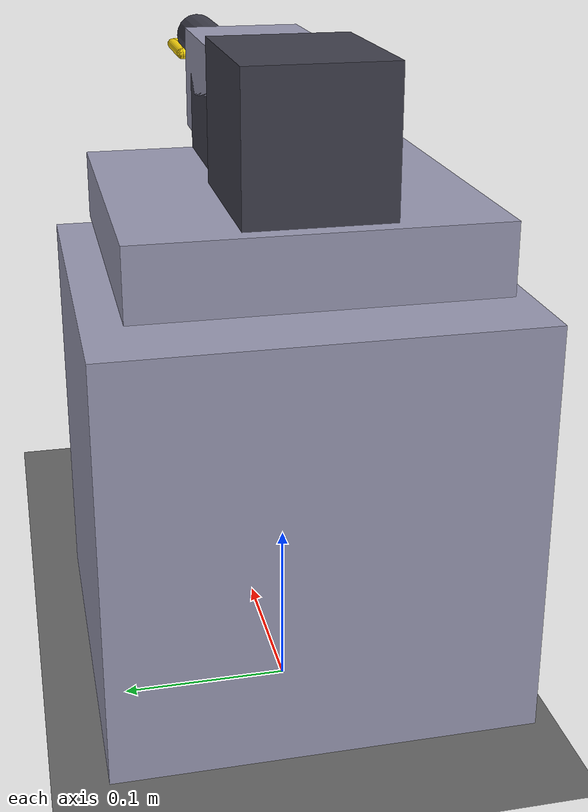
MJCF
<mujoco model="rubber_band_launcher">
  <option gravity="0 0 -9.81" timestep="0.002"/>

  <asset>
    <texture type="2d" name="floor_tex" builtin="checker" rgb1="0.3 0.3 0.3" rgb2="0.5 0.5 0.5" width="512" height="512"/>
    <material name="floor_mat" texture="floor_tex" texrepeat="4 4" reflectance="0.1"/>
    <material name="metal" rgba="0.6 0.6 0.7 1"/>
    <material name="rubber" rgba="1 0.85 0.05 1"/>
    <material name="gun_mat" rgba="0.25 0.25 0.3 1"/>
  </asset>

  <default>
    <default class="launcher_visual">
      <geom contype="0" conaffinity="0"/>
    </default>
  </default>

  <worldbody>
    <geom name="floor" type="plane" size="10 10 0.1" material="floor_mat"/>

    <body name="base" pos="0 0 0.15">
      <geom name="base_box" class="launcher_visual" type="box" size="0.12 0.12 0.12" material="metal"/>

      <body name="yaw_stage" pos="0 0 0.15">
        <joint name="yaw_joint" type="hinge" axis="0 0 1" damping="2"/>
        <geom name="yaw_plate" class="launcher_visual" type="box" size="0.10 0.10 0.02" material="metal"/>

        <body name="gun_body" pos="0 0 0.05">
          <geom name="gun_rear" class="launcher_visual" type="box" size="0.05 0.04 0.05" pos="-0.04 0 0" material="gun_mat"/>
          <geom name="gun_mid" class="launcher_visual" type="box" size="0.06 0.035 0.04" pos="0.04 0 0" material="gun_mat"/>

          <body name="pitch_stage" pos="0.08 0 0.01">
            <joint name="pitch_joint" type="hinge" axis="0 1 0" damping="1.5"/>
            <geom name="pitch_block" class="launcher_visual" type="box" size="0.04 0.035 0.03" material="metal"/>

            <body name="barrel" pos="0.1 0 0">
              <geom name="barrel_geom" class="launcher_visual" type="capsule" fromto="-0.1 0 0  0.12 0 0" size="0.015" material="gun_mat"/>

              <site name="muzzle_site" pos="0.12 0 0" size="0.01" rgba="1 0 0 0.5"/>

              <!-- Camera mounted at the muzzle. MuJoCo cameras look along local -Z, so this points down barrel +X. -->
              <camera name="aim_camera" pos="0.125 0 0" xyaxes="0 -1 0  0 0 1" fovy="60"/>
            </body>
          </body>
        </body>
      </body>
    </body>

    <body name="rubber_projectile" pos="0.30 0 0.35">
      <freejoint name="rubber_joint"/>
      <geom name="rb_1" type="capsule" fromto="-0.025  0.015 0   0.025  0.015 0" size="0.004" material="rubber" mass="0.003"/>
      <geom name="rb_2" type="capsule" fromto="-0.025 -0.015 0   0.025 -0.015 0" size="0.004" material="rubber" mass="0.003"/>
      <geom name="rb_3" type="capsule" fromto="-0.025 -0.015 0  -0.025  0.015 0" size="0.004" material="rubber" mass="0.003"/>
      <geom name="rb_4" type="capsule" fromto=" 0.025 -0.015 0   0.025  0.015 0" size="0.004" material="rubber" mass="0.003"/>
      <site name="proj_site" size="0.005"/>
    </body>
  </worldbody>

  <actuator>
    <position name="yaw_motor" joint="yaw_joint" kp="50" gear="1"/>
    <position name="pitch_motor" joint="pitch_joint" kp="40" gear="1"/>
  </actuator>
</mujoco>
